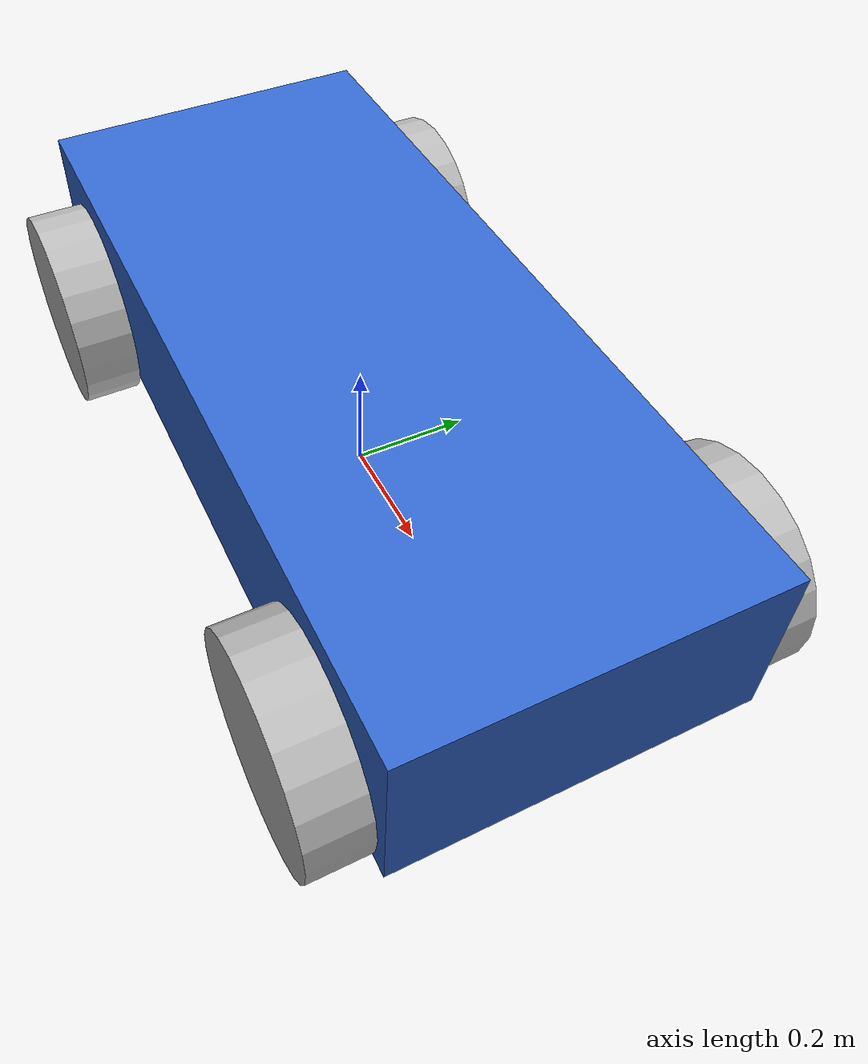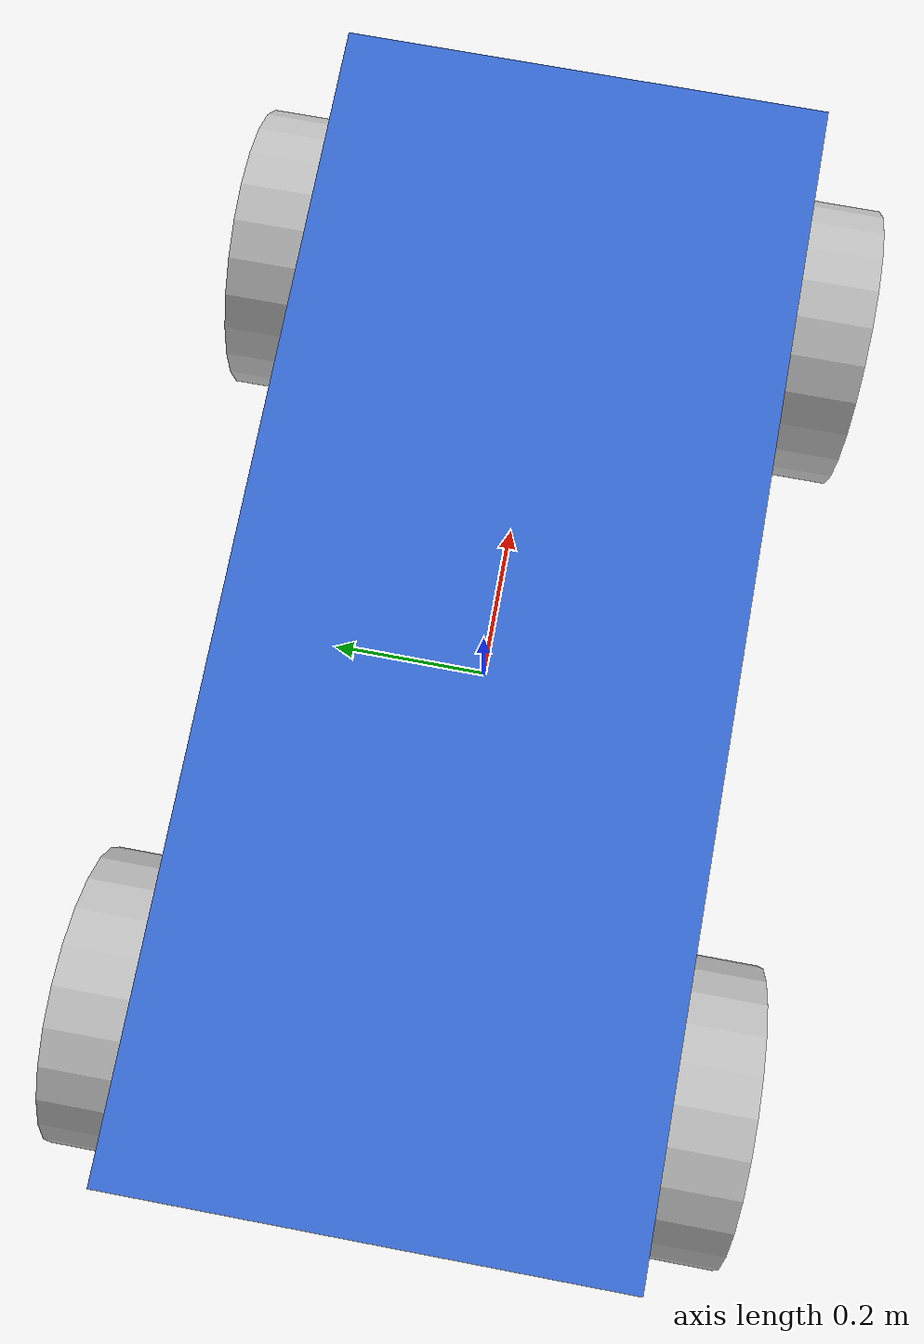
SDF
<?xml version="1.0"?>
<sdf version="1.9">
  <model name="ackermann_robot">
    <pose>0 0 0.18 0 0 0</pose>

    <link name="base_link">
      <inertial>
        <mass>20.0</mass>
        <inertia><ixx>1.0</ixx><iyy>1.5</iyy><izz>2.0</izz><ixy>0</ixy><ixz>0</ixz><iyz>0</iyz></inertia>
      </inertial>
      <collision name="chassis_col">
        <geometry><box><size>1.4 0.6 0.3</size></box></geometry>
      </collision>
      <visual name="chassis_vis">
        <geometry><box><size>1.4 0.6 0.3</size></box></geometry>
        <material><ambient>0.2 0.4 0.8 1</ambient><diffuse>0.2 0.4 0.8 1</diffuse></material>
      </visual>
      <sensor name="lidar" type="gpu_lidar">
        <pose>0.5 0 0.25 0 0 0</pose>
        <topic>scan</topic>
        <update_rate>10</update_rate>
        <lidar>
          <scan><horizontal><samples>360</samples><resolution>1</resolution>
            <min_angle>-3.14159</min_angle><max_angle>3.14159</max_angle></horizontal></scan>
          <range><min>0.12</min><max>12.0</max><resolution>0.01</resolution></range>
        </lidar>
        <always_on>1</always_on>
        <visualize>false</visualize>
      </sensor>
    </link>

    <!-- Rear wheels (driven). -->
    <link name="rear_left_wheel">
      <pose>-0.5 0.35 -0.08 -1.5708 0 0</pose>
      <inertial><mass>1.0</mass>
        <inertia><ixx>0.01</ixx><iyy>0.01</iyy><izz>0.01</izz><ixy>0</ixy><ixz>0</ixz><iyz>0</iyz></inertia></inertial>
      <collision name="c"><geometry><cylinder><radius>0.18</radius><length>0.1</length></cylinder></geometry></collision>
      <visual name="v"><geometry><cylinder><radius>0.18</radius><length>0.1</length></cylinder></geometry></visual>
    </link>
    <link name="rear_right_wheel">
      <pose>-0.5 -0.35 -0.08 -1.5708 0 0</pose>
      <inertial><mass>1.0</mass>
        <inertia><ixx>0.01</ixx><iyy>0.01</iyy><izz>0.01</izz><ixy>0</ixy><ixz>0</ixz><iyz>0</iyz></inertia></inertial>
      <collision name="c"><geometry><cylinder><radius>0.18</radius><length>0.1</length></cylinder></geometry></collision>
      <visual name="v"><geometry><cylinder><radius>0.18</radius><length>0.1</length></cylinder></geometry></visual>
    </link>

    <!-- Front steering wheels. -->
    <link name="front_left_wheel">
      <pose>0.5 0.35 -0.08 -1.5708 0 0</pose>
      <inertial><mass>1.0</mass>
        <inertia><ixx>0.01</ixx><iyy>0.01</iyy><izz>0.01</izz><ixy>0</ixy><ixz>0</ixz><iyz>0</iyz></inertia></inertial>
      <collision name="c"><geometry><cylinder><radius>0.18</radius><length>0.1</length></cylinder></geometry></collision>
      <visual name="v"><geometry><cylinder><radius>0.18</radius><length>0.1</length></cylinder></geometry></visual>
    </link>
    <link name="front_right_wheel">
      <pose>0.5 -0.35 -0.08 -1.5708 0 0</pose>
      <inertial><mass>1.0</mass>
        <inertia><ixx>0.01</ixx><iyy>0.01</iyy><izz>0.01</izz><ixy>0</ixy><ixz>0</ixz><iyz>0</iyz></inertia></inertial>
      <collision name="c"><geometry><cylinder><radius>0.18</radius><length>0.1</length></cylinder></geometry></collision>
      <visual name="v"><geometry><cylinder><radius>0.18</radius><length>0.1</length></cylinder></geometry></visual>
    </link>

    <!-- Steering link stubs. -->
    <link name="front_left_steer"><pose>0.5 0.35 -0.08 0 0 0</pose>
      <inertial><mass>0.1</mass>
        <inertia><ixx>0.001</ixx><iyy>0.001</iyy><izz>0.001</izz><ixy>0</ixy><ixz>0</ixz><iyz>0</iyz></inertia></inertial></link>
    <link name="front_right_steer"><pose>0.5 -0.35 -0.08 0 0 0</pose>
      <inertial><mass>0.1</mass>
        <inertia><ixx>0.001</ixx><iyy>0.001</iyy><izz>0.001</izz><ixy>0</ixy><ixz>0</ixz><iyz>0</iyz></inertia></inertial></link>

    <joint name="rear_left_wheel_joint" type="revolute">
      <parent>base_link</parent><child>rear_left_wheel</child>
      <axis><xyz>0 0 1</xyz></axis></joint>
    <joint name="rear_right_wheel_joint" type="revolute">
      <parent>base_link</parent><child>rear_right_wheel</child>
      <axis><xyz>0 0 1</xyz></axis></joint>

    <joint name="front_left_steer_joint" type="revolute">
      <parent>base_link</parent><child>front_left_steer</child>
      <axis><xyz>0 0 1</xyz><limit><lower>-0.6</lower><upper>0.6</upper></limit></axis></joint>
    <joint name="front_right_steer_joint" type="revolute">
      <parent>base_link</parent><child>front_right_steer</child>
      <axis><xyz>0 0 1</xyz><limit><lower>-0.6</lower><upper>0.6</upper></limit></axis></joint>
    <joint name="front_left_wheel_joint" type="revolute">
      <parent>front_left_steer</parent><child>front_left_wheel</child>
      <axis><xyz>0 0 1</xyz></axis></joint>
    <joint name="front_right_wheel_joint" type="revolute">
      <parent>front_right_steer</parent><child>front_right_wheel</child>
      <axis><xyz>0 0 1</xyz></axis></joint>

    <!-- Twist -> Ackermann steering (the bridge). Geometry mirrors model_params.L. -->
    <plugin filename="gz-sim-ackermann-steering-system"
            name="gz::sim::systems::AckermannSteering">
      <topic>cmd_vel</topic>
      <odom_topic>odom</odom_topic>
      <tf_topic>tf</tf_topic>
      <frame_id>odom</frame_id>
      <child_frame_id>base_link</child_frame_id>
      <left_joint>rear_left_wheel_joint</left_joint>
      <right_joint>rear_right_wheel_joint</right_joint>
      <left_steering_joint>front_left_steer_joint</left_steering_joint>
      <right_steering_joint>front_right_steer_joint</right_steering_joint>
      <kingpin_width>0.7</kingpin_width>
      <steering_limit>0.6</steering_limit>
      <wheel_base>1.0</wheel_base>
      <wheel_separation>0.7</wheel_separation>
      <wheel_radius>0.18</wheel_radius>
      <min_velocity>-1.0</min_velocity>
      <max_velocity>1.0</max_velocity>
      <odom_publish_frequency>30</odom_publish_frequency>
    </plugin>

    <!-- Ground-truth pose for the accuracy reference. -->
    <plugin filename="gz-sim-pose-publisher-system"
            name="gz::sim::systems::PosePublisher">
      <publish_link_pose>false</publish_link_pose>
      <publish_model_pose>true</publish_model_pose>
      <use_pose_vector_msg>true</use_pose_vector_msg>
      <update_frequency>30</update_frequency>
    </plugin>
  </model>
</sdf>
